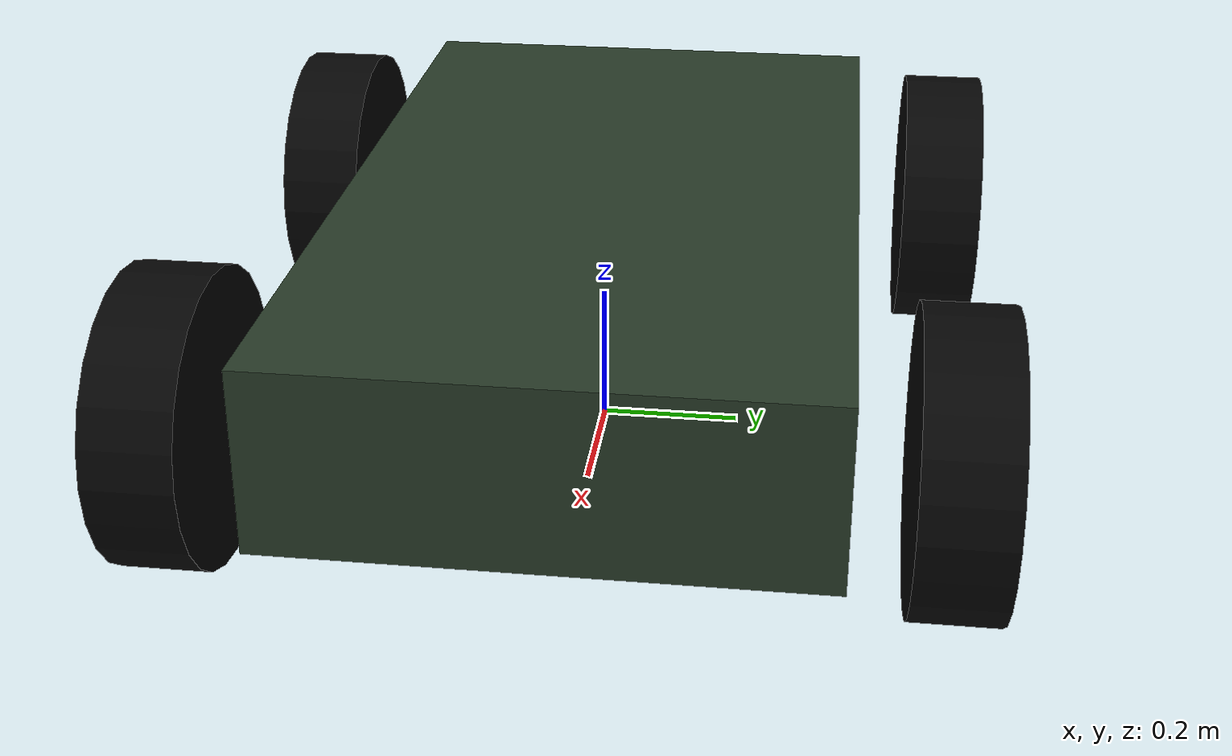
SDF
<?xml version="1.0" ?>
<sdf version="1.9">
  <model name="delivery_robot">
    <pose>0 0 0 0 0 0</pose>

    <!-- Base (keep it above ground, do not collide with wheels) -->
    <link name="base_link">
      <pose>0 0 0.25 0 0 0</pose>

      <inertial>
        <mass>45.0</mass>
        <inertia>
          <ixx>3.0</ixx><iyy>6.0</iyy><izz>6.0</izz>
          <ixy>0</ixy><ixz>0</ixz><iyz>0</iyz>
        </inertia>
      </inertial>

      <!-- Collision smaller and higher so it doesn't intersect wheels -->
      <collision name="base_col">
        <pose>0 0 0.00 0 0 0</pose>
        <geometry>
          <box><size>1.10 0.65 0.20</size></box>
        </geometry>
        <surface>
          <contact>
            <ode/>
          </contact>
          <friction>
            <ode>
              <mu>1.0</mu>
              <mu2>1.0</mu2>
            </ode>
          </friction>
        </surface>
      </collision>

      <visual name="base_vis">
        <pose>0 0 0.00 0 0 0</pose>
        <geometry>
          <box><size>1.289 0.730 0.25</size></box>
        </geometry>
        <material>
          <diffuse>0.16 0.23 0.16 1</diffuse>
        </material>
      </visual>
    </link>

    <!-- Wheel params -->
    <!-- wheelbase 0.889 => +/-0.4445 ; track 1.0 => +/-0.5 ; radius 0.20 -->
    <!-- IMPORTANT: cylinder axis is Z, so rotate wheel link by (0 1.5708 0) to make axis along Y -->
    <!-- We also add friction to wheel collision -->
    <link name="wheel_fl">
      <pose>0.4445 0.5 0.20 1.5708 0 0</pose>
      <inertial>
        <mass>3.0</mass>
        <inertia>
          <ixx>0.06</ixx><iyy>0.06</iyy><izz>0.06</izz>
          <ixy>0</ixy><ixz>0</ixz><iyz>0</iyz>
        </inertia>
      </inertial>
      <collision name="col">
        <geometry><cylinder><radius>0.20</radius><length>0.12</length></cylinder></geometry>
        <surface>
          <friction>
            <ode>
              <mu>2.0</mu>
              <mu2>2.0</mu2>
              <slip1>0.0</slip1>
              <slip2>0.0</slip2>
            </ode>
          </friction>
        </surface>
      </collision>
      <visual name="vis">
        <geometry><cylinder><radius>0.20</radius><length>0.12</length></cylinder></geometry>
        <material><diffuse>0.02 0.02 0.02 1</diffuse></material>
      </visual>
    </link>

    <link name="wheel_fr">
      <pose>0.4445 -0.5 0.20 1.570 0 0</pose>
      <inertial>
        <mass>3.0</mass>
        <inertia>
          <ixx>0.06</ixx><iyy>0.06</iyy><izz>0.06</izz>
          <ixy>0</ixy><ixz>0</ixz><iyz>0</iyz>
        </inertia>
      </inertial>
      <collision name="col">
        <geometry><cylinder><radius>0.20</radius><length>0.12</length></cylinder></geometry>
        <surface>
          <friction>
            <ode>
              <mu>2.0</mu>
              <mu2>2.0</mu2>
              <slip1>0.0</slip1>
              <slip2>0.0</slip2>
            </ode>
          </friction>
        </surface>
      </collision>
      <visual name="vis">
        <geometry><cylinder><radius>0.20</radius><length>0.12</length></cylinder></geometry>
        <material><diffuse>0.02 0.02 0.02 1</diffuse></material>
      </visual>
    </link><link name="wheel_rl">
      <pose>-0.4445 0.5 0.20 1.5708 0 0</pose>
      <inertial>
        <mass>3.0</mass>
        <inertia>
          <ixx>0.06</ixx><iyy>0.06</iyy><izz>0.06</izz>
          <ixy>0</ixy><ixz>0</ixz><iyz>0</iyz>
        </inertia>
      </inertial>
      <collision name="col">
        <geometry><cylinder><radius>0.20</radius><length>0.12</length></cylinder></geometry>
        <surface>
          <friction>
            <ode>
              <mu>2.0</mu>
              <mu2>2.0</mu2>
              <slip1>0.0</slip1>
              <slip2>0.0</slip2>
            </ode>
          </friction>
        </surface>
      </collision>
      <visual name="vis">
        <geometry><cylinder><radius>0.20</radius><length>0.12</length></cylinder></geometry>
        <material><diffuse>0.02 0.02 0.02 1</diffuse></material>
      </visual>
    </link>

    <link name="wheel_rr">
      <pose>-0.4445 -0.5 0.20 1.5708 0 0</pose>
      <inertial>
        <mass>3.0</mass>
        <inertia>
          <ixx>0.06</ixx><iyy>0.06</iyy><izz>0.06</izz>
          <ixy>0</ixy><ixz>0</ixz><iyz>0</iyz>
        </inertia>
      </inertial>
      <collision name="col">
        <geometry><cylinder><radius>0.20</radius><length>0.12</length></cylinder></geometry>
        <surface>
          <friction>
            <ode>
              <mu>2.0</mu>
              <mu2>2.0</mu2>
              <slip1>0.0</slip1>
              <slip2>0.0</slip2>
            </ode>
          </friction>
        </surface>
      </collision>
      <visual name="vis">
        <geometry><cylinder><radius>0.20</radius><length>0.12</length></cylinder></geometry>
        <material><diffuse>0.02 0.02 0.02 1</diffuse></material>
      </visual>
    </link>

    <!-- Wheel joints: axis is Y (because wheel links are rotated with pose 0 1.5708 0) -->
    <joint name="wheel_fl_joint" type="revolute">
      <parent>base_link</parent>
      <child>wheel_fl</child>
      <axis>
        <xyz>0 1 0</xyz>
        <limit><lower>-1e16</lower><upper>1e16</upper></limit>
        <dynamics><damping>0.2</damping><friction>0.0</friction></dynamics>
      </axis>
    </joint>

    <joint name="wheel_fr_joint" type="revolute">
      <parent>base_link</parent>
      <child>wheel_fr</child>
      <axis>
        <xyz>0 1 0</xyz>
        <limit><lower>-1e16</lower><upper>1e16</upper></limit>
        <dynamics><damping>0.2</damping><friction>0.0</friction></dynamics>
      </axis>
    </joint>

    <joint name="wheel_rl_joint" type="revolute">
      <parent>base_link</parent>
      <child>wheel_rl</child>
      <axis>
        <xyz>0 1 0</xyz>
        <limit><lower>-1e16</lower><upper>1e16</upper></limit>
        <dynamics><damping>0.2</damping><friction>0.0</friction></dynamics>
      </axis>
    </joint>

    <joint name="wheel_rr_joint" type="revolute">
      <parent>base_link</parent>
      <child>wheel_rr</child>
      <axis>
        <xyz>0 1 0</xyz>
        <limit><lower>-1e16</lower><upper>1e16</upper></limit>
        <dynamics><damping>0.2</damping><friction>0.0</friction></dynamics>
      </axis>
    </joint>

    <!-- Downward camera -->
    <link name="line_cam_link">
      <pose>0.35 0 0.28 0 0 0</pose>
      <sensor name="line_camera" type="camera">
        <pose>0 0 0 -1.5708 0 0</pose>
        <camera>
          <horizontal_fov>1.2</horizontal_fov>
          <image>
            <width>640</width>
            <height>480</height>
            <format>R8G8B8</format>
          </image>
          <clip><near>0.01</near><far>10.0</far></clip>
        </camera>
        <always_on>true</always_on>
        <update_rate>20</update_rate>
        <visualize>true</visualize>
        <topic>line_camera</topic>
      </sensor>
    </link>

    <joint name="line_cam_joint" type="fixed">
      <parent>base_link</parent>
      <child>line_cam_link</child>
    </joint>

    <!-- Systems -->
    <plugin filename="gz-sim-sensors-system" name="gz::sim::systems::Sensors"/><plugin filename="gz-sim-diff-drive-system" name="gz::sim::systems::DiffDrive">
      <left_joint>wheel_fl_joint</left_joint>
      <left_joint>wheel_rl_joint</left_joint>
      <right_joint>wheel_fr_joint</right_joint>
      <right_joint>wheel_rr_joint</right_joint>

      <wheel_separation>1.0</wheel_separation>
      <wheel_radius>0.20</wheel_radius>

      <topic>/cmd_vel</topic>
      <odom_topic>/odom</odom_topic>
      <tf_topic>/tf</tf_topic>
      <frame_id>odom</frame_id>
      <child_frame_id>base_link</child_frame_id>
    </plugin>

  </model>
</sdf>
